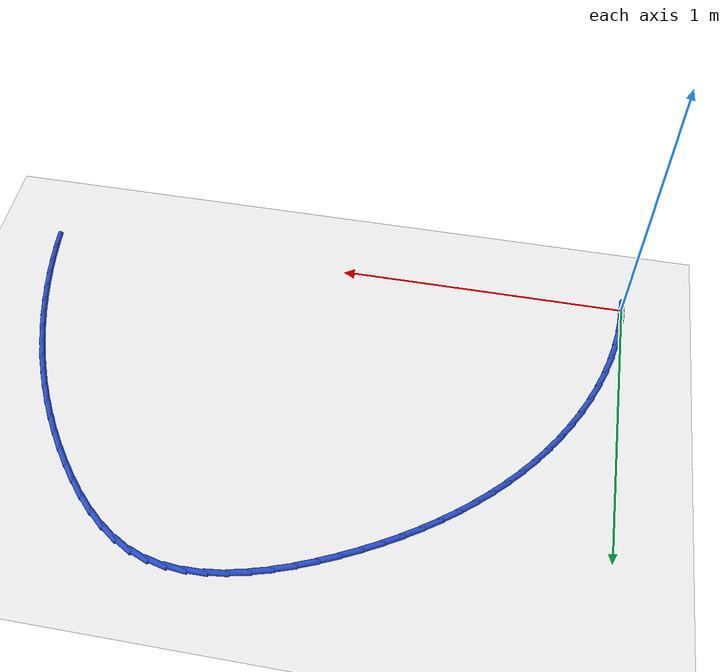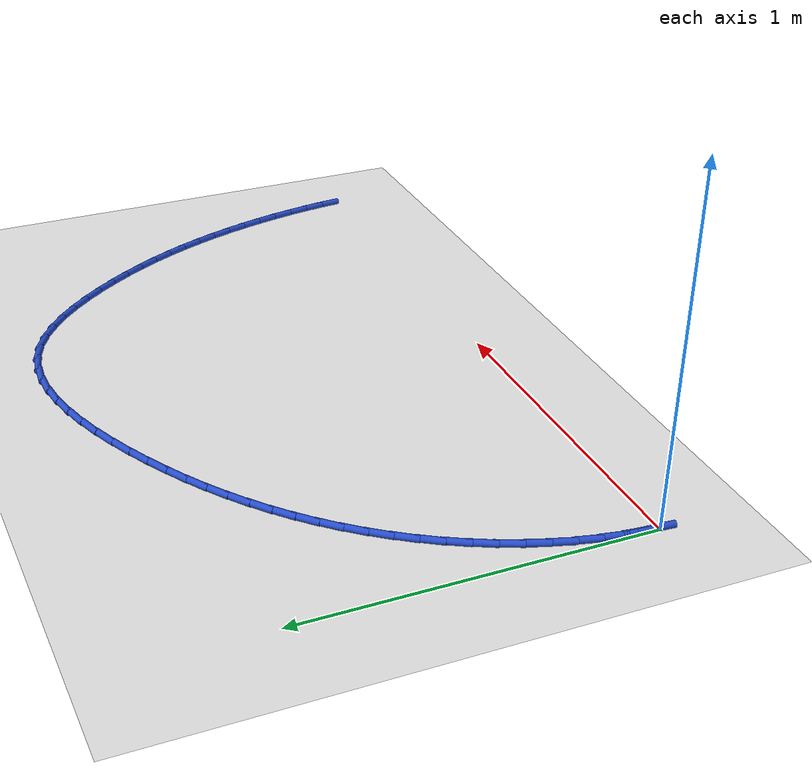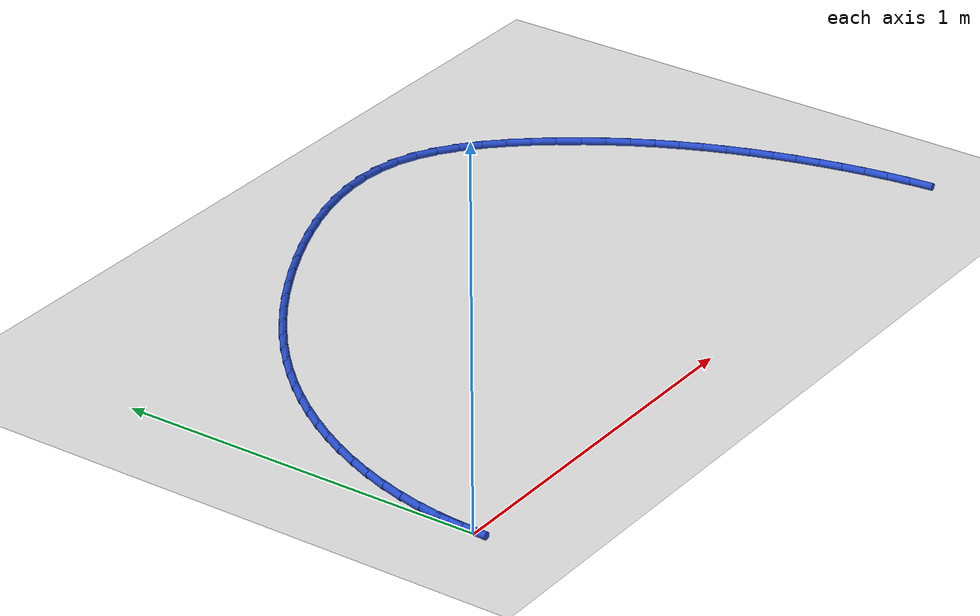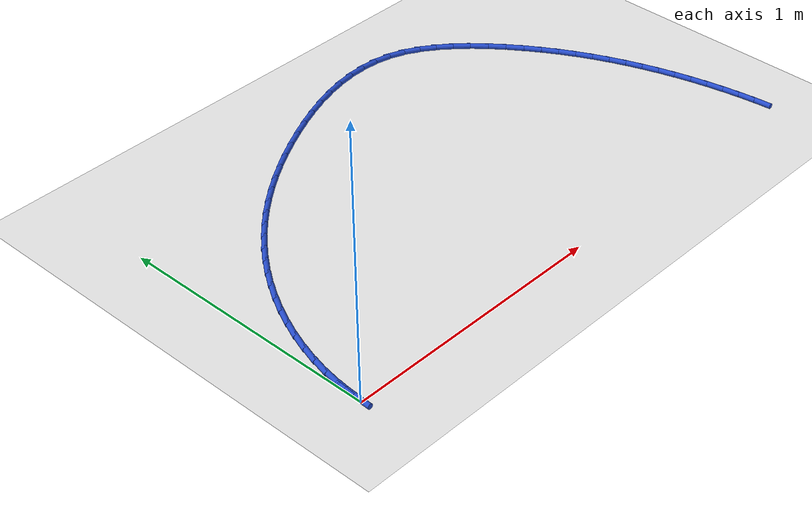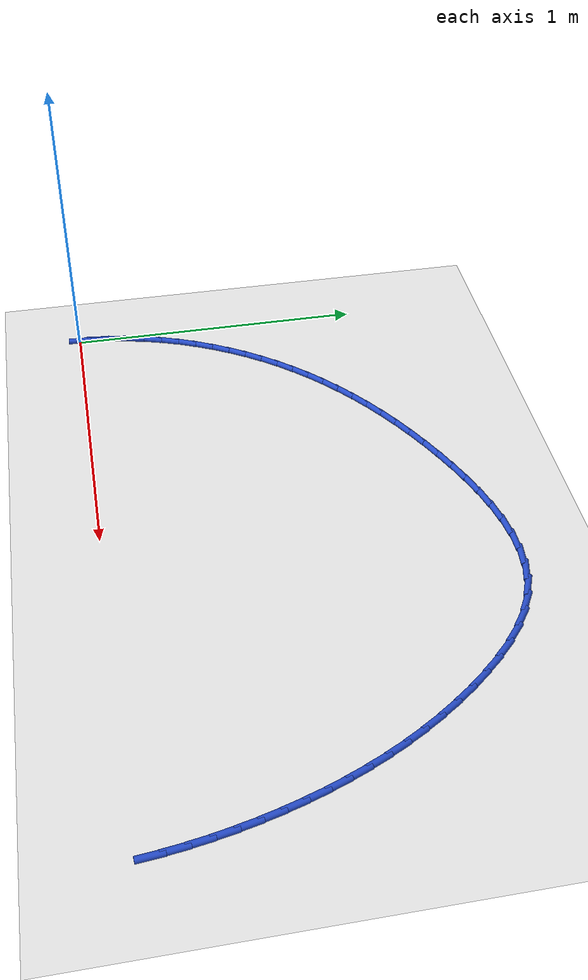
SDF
<sdf version="1.6">
 <world name="default">
  <model name="ground_plane">
   <static>1</static>
   <link name="link">
    <collision name="collision">
     <geometry><plane><normal>0 0 1</normal><size>100 100</size></plane></geometry>
     <surface><friction><ode><mu>100</mu><mu2>50</mu2></ode></friction></surface>
    </collision>
    <visual name="visual">
     <cast_shadows>0</cast_shadows>
     <geometry><plane><normal>0 0 1</normal><size>100 100</size></plane></geometry>
     <material>
      <script><uri>file://media/materials/scripts/gazebo.material</uri><name>Gazebo/WhiteGlow</name></script>
     </material>
    </visual>
   </link>
  </model>
  <model name="line">
   <link name="link_1">
    <pose>0.003250588117856417 0.06508628242194739 0.01 0 1.57 1.4542673928490195</pose>
    <collision name="collision">
     <geometry><cylinder><radius>0.01</radius><length>0.08</length></cylinder></geometry>
    </collision>
    <visual name="visual">
     <material>
      <script><name>Gazebo/Blue</name><uri>file://media/materials/scripts/gazebo.material</uri></script>
     </material>
     <geometry><cylinder><radius>0.01</radius><length>0.08</length></cylinder></geometry>
    </visual>
   </link>
   <link name="link_2">
    <pose>0.010806965055310272 0.12963800376999615 0.01 0 1.57 1.3905275361110174</pose>
    <collision name="collision">
     <geometry><cylinder><radius>0.01</radius><length>0.08</length></cylinder></geometry>
    </collision>
    <visual name="visual">
     <material>
      <script><name>Gazebo/Blue</name><uri>file://media/materials/scripts/gazebo.material</uri></script>
     </material>
     <geometry><cylinder><radius>0.01</radius><length>0.08</length></cylinder></geometry>
    </visual>
   </link>
   <link name="link_3">
    <pose>0.022441281605132455 0.19347610056897954 0.01 0 1.57 1.3295883491278213</pose>
    <collision name="collision">
     <geometry><cylinder><radius>0.01</radius><length>0.08</length></cylinder></geometry>
    </collision>
    <visual name="visual">
     <material>
      <script><name>Gazebo/Blue</name><uri>file://media/materials/scripts/gazebo.material</uri></script>
     </material>
     <geometry><cylinder><radius>0.01</radius><length>0.08</length></cylinder></geometry>
    </visual>
   </link>
   <link name="link_4">
    <pose>0.03792568856009386 0.25642150934373087 0.01 0 1.57 1.2712848922088122</pose>
    <collision name="collision">
     <geometry><cylinder><radius>0.01</radius><length>0.08</length></cylinder></geometry>
    </collision>
    <visual name="visual">
     <material>
      <script><name>Gazebo/Blue</name><uri>file://media/materials/scripts/gazebo.material</uri></script>
     </material>
     <geometry><cylinder><radius>0.01</radius><length>0.08</length></cylinder></geometry>
    </visual>
   </link>
   <link name="link_5">
    <pose>0.057032336712965356 0.31829516661908314 0.01 0 1.57 1.2153926182208388</pose>
    <collision name="collision">
     <geometry><cylinder><radius>0.01</radius><length>0.08</length></cylinder></geometry>
    </collision>
    <visual name="visual">
     <material>
      <script><name>Gazebo/Blue</name><uri>file://media/materials/scripts/gazebo.material</uri></script>
     </material>
     <geometry><cylinder><radius>0.01</radius><length>0.08</length></cylinder></geometry>
    </visual>
   </link>
   <link name="link_6">
    <pose>0.07953337685651775 0.3789180089198695 0.01 0 1.57 1.1616424842232178</pose>
    <collision name="collision">
     <geometry><cylinder><radius>0.01</radius><length>0.08</length></cylinder></geometry>
    </collision>
    <visual name="visual">
     <material>
      <script><name>Gazebo/Blue</name><uri>file://media/materials/scripts/gazebo.material</uri></script>
     </material>
     <geometry><cylinder><radius>0.01</radius><length>0.08</length></cylinder></geometry>
    </visual>
   </link>
   <link name="link_7">
    <pose>0.10520095978352198 0.4381109727709233 0.01 0 1.57 1.1097324065377252</pose>
    <collision name="collision">
     <geometry><cylinder><radius>0.01</radius><length>0.08</length></cylinder></geometry>
    </collision>
    <visual name="visual">
     <material>
      <script><name>Gazebo/Blue</name><uri>file://media/materials/scripts/gazebo.material</uri></script>
     </material>
     <geometry><cylinder><radius>0.01</radius><length>0.08</length></cylinder></geometry>
    </visual>
   </link>
   <link name="link_8">
    <pose>0.1338072362867489 0.4956949946970776 0.01 0 1.57 1.0593339608173005</pose>
    <collision name="collision">
     <geometry><cylinder><radius>0.01</radius><length>0.08</length></cylinder></geometry>
    </collision>
    <visual name="visual">
     <material>
      <script><name>Gazebo/Blue</name><uri>file://media/materials/scripts/gazebo.material</uri></script>
     </material>
     <geometry><cylinder><radius>0.01</radius><length>0.08</length></cylinder></geometry>
    </visual>
   </link>
   <link name="link_9">
    <pose>0.16512457917793538 0.5514912667273931 0.01 0 1.57 1.0099193973070923</pose>
    <collision name="collision">
     <geometry><cylinder><radius>0.01</radius><length>0.08</length></cylinder></geometry>
    </collision>
    <visual name="visual">
     <material>
      <script><name>Gazebo/Blue</name><uri>file://media/materials/scripts/gazebo.material</uri></script>
     </material>
     <geometry><cylinder><radius>0.01</radius><length>0.08</length></cylinder></geometry>
    </visual>
   </link>
   <link name="link_10">
    <pose>0.1989741830446452 0.6053771660463702 0.01 0 1.57 0.9610086905688403</pose>
    <collision name="collision">
     <geometry><cylinder><radius>0.01</radius><length>0.08</length></cylinder></geometry>
    </collision>
    <visual name="visual">
     <material>
      <script><name>Gazebo/Blue</name><uri>file://media/materials/scripts/gazebo.material</uri></script>
     </material>
     <geometry><cylinder><radius>0.01</radius><length>0.08</length></cylinder></geometry>
    </visual>
   </link>
   <link name="link_11">
    <pose>0.23528704441753193 0.6573564322891907 0.01 0 1.57 0.9127402957853704</pose>
    <collision name="collision">
     <geometry><cylinder><radius>0.01</radius><length>0.08</length></cylinder></geometry>
    </collision>
    <visual name="visual">
     <material>
      <script><name>Gazebo/Blue</name><uri>file://media/materials/scripts/gazebo.material</uri></script>
     </material>
     <geometry><cylinder><radius>0.01</radius><length>0.08</length></cylinder></geometry>
    </visual>
   </link>
   <link name="link_12">
    <pose>0.27400915317218794 0.7074500597566379 0.01 0 1.57 0.8653074858099016</pose>
    <collision name="collision">
     <geometry><cylinder><radius>0.01</radius><length>0.08</length></cylinder></geometry>
    </collision>
    <visual name="visual">
     <material>
      <script><name>Gazebo/Blue</name><uri>file://media/materials/scripts/gazebo.material</uri></script>
     </material>
     <geometry><cylinder><radius>0.01</radius><length>0.08</length></cylinder></geometry>
    </visual>
   </link>
   <link name="link_13">
    <pose>0.31508649918420556 0.7556790427494944 0.01 0 1.57 0.8188819547641519</pose>
    <collision name="collision">
     <geometry><cylinder><radius>0.01</radius><length>0.08</length></cylinder></geometry>
    </collision>
    <visual name="visual">
     <material>
      <script><name>Gazebo/Blue</name><uri>file://media/materials/scripts/gazebo.material</uri></script>
     </material>
     <geometry><cylinder><radius>0.01</radius><length>0.08</length></cylinder></geometry>
    </visual>
   </link>
   <link name="link_14">
    <pose>0.35846507232917724 0.8020643755685435 0.01 0 1.57 0.7736110246855883</pose>
    <collision name="collision">
     <geometry><cylinder><radius>0.01</radius><length>0.08</length></cylinder></geometry>
    </collision>
    <visual name="visual">
     <material>
      <script><name>Gazebo/Blue</name><uri>file://media/materials/scripts/gazebo.material</uri></script>
     </material>
     <geometry><cylinder><radius>0.01</radius><length>0.08</length></cylinder></geometry>
    </visual>
   </link>
   <link name="link_15">
    <pose>0.4040908624826954 0.8466270525145679 0.01 0 1.57 0.7296161619519644</pose>
    <collision name="collision">
     <geometry><cylinder><radius>0.01</radius><length>0.08</length></cylinder></geometry>
    </collision>
    <visual name="visual">
     <material>
      <script><name>Gazebo/Blue</name><uri>file://media/materials/scripts/gazebo.material</uri></script>
     </material>
     <geometry><cylinder><radius>0.01</radius><length>0.08</length></cylinder></geometry>
    </visual>
   </link>
   <link name="link_16">
    <pose>0.4519098595203524 0.8893880678883513 0.01 0 1.57 0.686992719460715</pose>
    <collision name="collision">
     <geometry><cylinder><radius>0.01</radius><length>0.08</length></cylinder></geometry>
    </collision>
    <visual name="visual">
     <material>
      <script><name>Gazebo/Blue</name><uri>file://media/materials/scripts/gazebo.material</uri></script>
     </material>
     <geometry><cylinder><radius>0.01</radius><length>0.08</length></cylinder></geometry>
    </visual>
   </link>
   <link name="link_17">
    <pose>0.501868053317741 0.9303684159906765 0.01 0 1.57 0.6458107336852247</pose>
    <collision name="collision">
     <geometry><cylinder><radius>0.01</radius><length>0.08</length></cylinder></geometry>
    </collision>
    <visual name="visual">
     <material>
      <script><name>Gazebo/Blue</name><uri>file://media/materials/scripts/gazebo.material</uri></script>
     </material>
     <geometry><cylinder><radius>0.01</radius><length>0.08</length></cylinder></geometry>
    </visual>
   </link>
   <link name="link_18">
    <pose>0.553911433750453 0.9695890911223265 0.01 0 1.57 0.6061165537548413</pose>
    <collision name="collision">
     <geometry><cylinder><radius>0.01</radius><length>0.08</length></cylinder></geometry>
    </collision>
    <visual name="visual">
     <material>
      <script><name>Gazebo/Blue</name><uri>file://media/materials/scripts/gazebo.material</uri></script>
     </material>
     <geometry><cylinder><radius>0.01</radius><length>0.08</length></cylinder></geometry>
    </visual>
   </link>
   <link name="link_19">
    <pose>0.6079859906940812 1.0070710875840843 0.01 0 1.57 0.5679350614733311</pose>
    <collision name="collision">
     <geometry><cylinder><radius>0.01</radius><length>0.08</length></cylinder></geometry>
    </collision>
    <visual name="visual">
     <material>
      <script><name>Gazebo/Blue</name><uri>file://media/materials/scripts/gazebo.material</uri></script>
     </material>
     <geometry><cylinder><radius>0.01</radius><length>0.08</length></cylinder></geometry>
    </visual>
   </link>
   <link name="link_20">
    <pose>0.664037714024218 1.0428353996767328 0.01 0 1.57 0.5312722506015919</pose>
    <collision name="collision">
     <geometry><cylinder><radius>0.01</radius><length>0.08</length></cylinder></geometry>
    </collision>
    <visual name="visual">
     <material>
      <script><name>Gazebo/Blue</name><uri>file://media/materials/scripts/gazebo.material</uri></script>
     </material>
     <geometry><cylinder><radius>0.01</radius><length>0.08</length></cylinder></geometry>
    </visual>
   </link>
   <link name="link_21">
    <pose>0.7220125936164552 1.0769030217010551 0.01 0 1.57 0.4961179622759861</pose>
    <collision name="collision">
     <geometry><cylinder><radius>0.01</radius><length>0.08</length></cylinder></geometry>
    </collision>
    <visual name="visual">
     <material>
      <script><name>Gazebo/Blue</name><uri>file://media/materials/scripts/gazebo.material</uri></script>
     </material>
     <geometry><cylinder><radius>0.01</radius><length>0.08</length></cylinder></geometry>
    </visual>
   </link>
   <link name="link_22">
    <pose>0.7818566193463863 1.109294947957835 0.01 0 1.57 0.46229518126520197</pose>
    <collision name="collision">
     <geometry><cylinder><radius>0.01</radius><length>0.08</length></cylinder></geometry>
    </collision>
    <visual name="visual">
     <material>
      <script><name>Gazebo/Blue</name><uri>file://media/materials/scripts/gazebo.material</uri></script>
     </material>
     <geometry><cylinder><radius>0.01</radius><length>0.08</length></cylinder></geometry>
    </visual>
   </link>
   <link name="link_23">
    <pose>0.843507489464606 1.1400162304495147 0.01 0 1.57 0.4260298593438556</pose>
    <collision name="collision">
     <geometry><cylinder><radius>0.01</radius><length>0.08</length></cylinder></geometry>
    </collision>
    <visual name="visual">
     <material>
      <script><name>Gazebo/Blue</name><uri>file://media/materials/scripts/gazebo.material</uri></script>
     </material>
     <geometry><cylinder><radius>0.01</radius><length>0.08</length></cylinder></geometry>
    </visual>
   </link>
   <link name="link_24">
    <pose>0.9067086740428729 1.1686984788708945 0.01 0 1.57 0.3828916015726775</pose>
    <collision name="collision">
     <geometry><cylinder><radius>0.01</radius><length>0.08</length></cylinder></geometry>
    </collision>
    <visual name="visual">
     <material>
      <script><name>Gazebo/Blue</name><uri>file://media/materials/scripts/gazebo.material</uri></script>
     </material>
     <geometry><cylinder><radius>0.01</radius><length>0.08</length></cylinder></geometry>
    </visual>
   </link>
   <link name="link_25">
    <pose>0.9710074385992452 1.1945960606353352 0.01 0 1.57 0.33149818635385725</pose>
    <collision name="collision">
     <geometry><cylinder><radius>0.01</radius><length>0.08</length></cylinder></geometry>
    </collision>
    <visual name="visual">
     <material>
      <script><name>Gazebo/Blue</name><uri>file://media/materials/scripts/gazebo.material</uri></script>
     </material>
     <geometry><cylinder><radius>0.01</radius><length>0.08</length></cylinder></geometry>
    </visual>
   </link>
   <link name="link_26">
    <pose>1.03594236173911 1.2169466408386782 0.01 0 1.57 0.27030834063154224</pose>
    <collision name="collision">
     <geometry><cylinder><radius>0.01</radius><length>0.08</length></cylinder></geometry>
    </collision>
    <visual name="visual">
     <material>
      <script><name>Gazebo/Blue</name><uri>file://media/materials/scripts/gazebo.material</uri></script>
     </material>
     <geometry><cylinder><radius>0.01</radius><length>0.08</length></cylinder></geometry>
    </visual>
   </link>
   <link name="link_27">
    <pose>1.101052022067855 1.2349878845767661 0.01 0 1.57 0.19746938621623242</pose>
    <collision name="collision">
     <geometry><cylinder><radius>0.01</radius><length>0.08</length></cylinder></geometry>
    </collision>
    <visual name="visual">
     <material>
      <script><name>Gazebo/Blue</name><uri>file://media/materials/scripts/gazebo.material</uri></script>
     </material>
     <geometry><cylinder><radius>0.01</radius><length>0.08</length></cylinder></geometry>
    </visual>
   </link>
   <link name="link_28">
    <pose>1.165874998190867 1.247957456945441 0.01 0 1.57 0.1109059741574494</pose>
    <collision name="collision">
     <geometry><cylinder><radius>0.01</radius><length>0.08</length></cylinder></geometry>
    </collision>
    <visual name="visual">
     <material>
      <script><name>Gazebo/Blue</name><uri>file://media/materials/scripts/gazebo.material</uri></script>
     </material>
     <geometry><cylinder><radius>0.01</radius><length>0.08</length></cylinder></geometry>
    </visual>
   </link>
   <link name="link_29">
    <pose>1.2299498687135342 1.2550930230405453 0.01 0 1.57 0.008577248824313885</pose>
    <collision name="collision">
     <geometry><cylinder><radius>0.01</radius><length>0.08</length></cylinder></geometry>
    </collision>
    <visual name="visual">
     <material>
      <script><name>Gazebo/Blue</name><uri>file://media/materials/scripts/gazebo.material</uri></script>
     </material>
     <geometry><cylinder><radius>0.01</radius><length>0.08</length></cylinder></geometry>
    </visual>
   </link>
   <link name="link_30">
    <pose>1.2928152122412442 1.2556322479579214 0.01 0 1.57 -0.11098124444945745</pose>
    <collision name="collision">
     <geometry><cylinder><radius>0.01</radius><length>0.08</length></cylinder></geometry>
    </collision>
    <visual name="visual">
     <material>
      <script><name>Gazebo/Blue</name><uri>file://media/materials/scripts/gazebo.material</uri></script>
     </material>
     <geometry><cylinder><radius>0.01</radius><length>0.08</length></cylinder></geometry>
    </visual>
   </link>
   <link name="link_31">
    <pose>1.3540096073793844 1.2488127967934108 0.01 0 1.57 -0.24776470333364242</pose>
    <collision name="collision">
     <geometry><cylinder><radius>0.01</radius><length>0.08</length></cylinder></geometry>
    </collision>
    <visual name="visual">
     <material>
      <script><name>Gazebo/Blue</name><uri>file://media/materials/scripts/gazebo.material</uri></script>
     </material>
     <geometry><cylinder><radius>0.01</radius><length>0.08</length></cylinder></geometry>
    </visual>
   </link>
   <link name="link_32">
    <pose>1.4130716327333417 1.2338723346428564 0.01 0 1.57 -0.39656884118153624</pose>
    <collision name="collision">
     <geometry><cylinder><radius>0.01</radius><length>0.08</length></cylinder></geometry>
    </collision>
    <visual name="visual">
     <material>
      <script><name>Gazebo/Blue</name><uri>file://media/materials/scripts/gazebo.material</uri></script>
     </material>
     <geometry><cylinder><radius>0.01</radius><length>0.08</length></cylinder></geometry>
    </visual>
   </link>
   <link name="link_33">
    <pose>1.469576535880511 1.2102106482737078 0.01 0 1.57 -0.5327721002808438</pose>
    <collision name="collision">
     <geometry><cylinder><radius>0.01</radius><length>0.08</length></cylinder></geometry>
    </collision>
    <visual name="visual">
     <material>
      <script><name>Gazebo/Blue</name><uri>file://media/materials/scripts/gazebo.material</uri></script>
     </material>
     <geometry><cylinder><radius>0.01</radius><length>0.08</length></cylinder></geometry>
    </visual>
   </link>
   <link name="link_34">
    <pose>1.5233836347340122 1.1784834625166165 0.01 0 1.57 -0.6463093380492055</pose>
    <collision name="collision">
     <geometry><cylinder><radius>0.01</radius><length>0.08</length></cylinder></geometry>
    </collision>
    <visual name="visual">
     <material>
      <script><name>Gazebo/Blue</name><uri>file://media/materials/scripts/gazebo.material</uri></script>
     </material>
     <geometry><cylinder><radius>0.01</radius><length>0.08</length></cylinder></geometry>
    </visual>
   </link>
   <link name="link_35">
    <pose>1.5744848661770008 1.139932840131341 0.01 0 1.57 -0.7393918563579897</pose>
    <collision name="collision">
     <geometry><cylinder><radius>0.01</radius><length>0.08</length></cylinder></geometry>
    </collision>
    <visual name="visual">
     <material>
      <script><name>Gazebo/Blue</name><uri>file://media/materials/scripts/gazebo.material</uri></script>
     </material>
     <geometry><cylinder><radius>0.01</radius><length>0.08</length></cylinder></geometry>
    </visual>
   </link>
   <link name="link_36">
    <pose>1.6228729149561958 1.095804150348599 0.01 0 1.57 -0.8150704101806093</pose>
    <collision name="collision">
     <geometry><cylinder><radius>0.01</radius><length>0.08</length></cylinder></geometry>
    </collision>
    <visual name="visual">
     <material>
      <script><name>Gazebo/Blue</name><uri>file://media/materials/scripts/gazebo.material</uri></script>
     </material>
     <geometry><cylinder><radius>0.01</radius><length>0.08</length></cylinder></geometry>
    </visual>
   </link>
   <link name="link_37">
    <pose>1.6685404658183165 1.0473427623991074 0.01 0 1.57 -0.8762587377811254</pose>
    <collision name="collision">
     <geometry><cylinder><radius>0.01</radius><length>0.08</length></cylinder></geometry>
    </collision>
    <visual name="visual">
     <material>
      <script><name>Gazebo/Blue</name><uri>file://media/materials/scripts/gazebo.material</uri></script>
     </material>
     <geometry><cylinder><radius>0.01</radius><length>0.08</length></cylinder></geometry>
    </visual>
   </link>
   <link name="link_38">
    <pose>1.7114802035100813 0.9957940455135834 0.01 0 1.57 -0.925409544350224</pose>
    <collision name="collision">
     <geometry><cylinder><radius>0.01</radius><length>0.08</length></cylinder></geometry>
    </collision>
    <visual name="visual">
     <material>
      <script><name>Gazebo/Blue</name><uri>file://media/materials/scripts/gazebo.material</uri></script>
     </material>
     <geometry><cylinder><radius>0.01</radius><length>0.08</length></cylinder></geometry>
    </visual>
   </link>
   <link name="link_39">
    <pose>1.7516852873647406 0.9423973326563033 0.01 0 1.57 -0.9675765143213644</pose>
    <collision name="collision">
     <geometry><cylinder><radius>0.01</radius><length>0.08</length></cylinder></geometry>
    </collision>
    <visual name="visual">
     <material>
      <script><name>Gazebo/Blue</name><uri>file://media/materials/scripts/gazebo.material</uri></script>
     </material>
     <geometry><cylinder><radius>0.01</radius><length>0.08</length></cylinder></geometry>
    </visual>
   </link>
   <link name="link_40">
    <pose>1.7891824624657935 0.8879647796103313 0.01 0 1.57 -1.0086710077180179</pose>
    <collision name="collision">
     <geometry><cylinder><radius>0.01</radius><length>0.08</length></cylinder></geometry>
    </collision>
    <visual name="visual">
     <material>
      <script><name>Gazebo/Blue</name><uri>file://media/materials/scripts/gazebo.material</uri></script>
     </material>
     <geometry><cylinder><radius>0.01</radius><length>0.08</length></cylinder></geometry>
    </visual>
   </link>
   <link name="link_41">
    <pose>1.8240537046543037 0.832606062114021 0.01 0 1.57 -1.0490412065317973</pose>
    <collision name="collision">
     <geometry><cylinder><radius>0.01</radius><length>0.08</length></cylinder></geometry>
    </collision>
    <visual name="visual">
     <material>
      <script><name>Gazebo/Blue</name><uri>file://media/materials/scripts/gazebo.material</uri></script>
     </material>
     <geometry><cylinder><radius>0.01</radius><length>0.08</length></cylinder></geometry>
    </visual>
   </link>
   <link name="link_42">
    <pose>1.8563861320187585 0.7763654516571322 0.01 0 1.57 -1.0885221469435016</pose>
    <collision name="collision">
     <geometry><cylinder><radius>0.01</radius><length>0.08</length></cylinder></geometry>
    </collision>
    <visual name="visual">
     <material>
      <script><name>Gazebo/Blue</name><uri>file://media/materials/scripts/gazebo.material</uri></script>
     </material>
     <geometry><cylinder><radius>0.01</radius><length>0.08</length></cylinder></geometry>
    </visual>
   </link>
   <link name="link_43">
    <pose>1.8862668626476435 0.719287219729426 0.01 0 1.57 -1.1269652739600031</pose>
    <collision name="collision">
     <geometry><cylinder><radius>0.01</radius><length>0.08</length></cylinder></geometry>
    </collision>
    <visual name="visual">
     <material>
      <script><name>Gazebo/Blue</name><uri>file://media/materials/scripts/gazebo.material</uri></script>
     </material>
     <geometry><cylinder><radius>0.01</radius><length>0.08</length></cylinder></geometry>
    </visual>
   </link>
   <link name="link_44">
    <pose>1.9137830146294459 0.6614156378206624 0.01 0 1.57 -1.164240431437653</pose>
    <collision name="collision">
     <geometry><cylinder><radius>0.01</radius><length>0.08</length></cylinder></geometry>
    </collision>
    <visual name="visual">
     <material>
      <script><name>Gazebo/Blue</name><uri>file://media/materials/scripts/gazebo.material</uri></script>
     </material>
     <geometry><cylinder><radius>0.01</radius><length>0.08</length></cylinder></geometry>
    </visual>
   </link>
   <link name="link_45">
    <pose>1.9390217060526518 0.6027949774206024 0.01 0 1.57 -1.2002369544189695</pose>
    <collision name="collision">
     <geometry><cylinder><radius>0.01</radius><length>0.08</length></cylinder></geometry>
    </collision>
    <visual name="visual">
     <material>
      <script><name>Gazebo/Blue</name><uri>file://media/materials/scripts/gazebo.material</uri></script>
     </material>
     <geometry><cylinder><radius>0.01</radius><length>0.08</length></cylinder></geometry>
    </visual>
   </link>
   <link name="link_46">
    <pose>1.9620700550057482 0.5434695100190061 0.01 0 1.57 -1.2348639140825046</pose>
    <collision name="collision">
     <geometry><cylinder><radius>0.01</radius><length>0.08</length></cylinder></geometry>
    </collision>
    <visual name="visual">
     <material>
      <script><name>Gazebo/Blue</name><uri>file://media/materials/scripts/gazebo.material</uri></script>
     </material>
     <geometry><cylinder><radius>0.01</radius><length>0.08</length></cylinder></geometry>
    </visual>
   </link>
   <link name="link_47">
    <pose>1.9830151795772202 0.48348350710563404 0.01 0 1.57 -1.2680496194625333</pose>
    <collision name="collision">
     <geometry><cylinder><radius>0.01</radius><length>0.08</length></cylinder></geometry>
    </collision>
    <visual name="visual">
     <material>
      <script><name>Gazebo/Blue</name><uri>file://media/materials/scripts/gazebo.material</uri></script>
     </material>
     <geometry><cylinder><radius>0.01</radius><length>0.08</length></cylinder></geometry>
    </visual>
   </link>
   <link name="link_48">
    <pose>2.0019441978555546 0.4228812401702466 0.01 0 1.57 -1.29974604226859</pose>
    <collision name="collision">
     <geometry><cylinder><radius>0.01</radius><length>0.08</length></cylinder></geometry>
    </collision>
    <visual name="visual">
     <material>
      <script><name>Gazebo/Blue</name><uri>file://media/materials/scripts/gazebo.material</uri></script>
     </material>
     <geometry><cylinder><radius>0.01</radius><length>0.08</length></cylinder></geometry>
    </visual>
   </link>
   <link name="link_49">
    <pose>2.0189438730505307 0.36170694686406957 0.01 0 1.57 -1.330387577299915</pose>
    <collision name="collision">
     <geometry><cylinder><radius>0.01</radius><length>0.08</length></cylinder></geometry>
    </collision>
    <visual name="visual">
     <material>
      <script><name>Gazebo/Blue</name><uri>file://media/materials/scripts/gazebo.material</uri></script>
     </material>
     <geometry><cylinder><radius>0.01</radius><length>0.08</length></cylinder></geometry>
    </visual>
   </link>
   <link name="link_50">
    <pose>2.0340708411022916 0.30000199213101364 0.01 0 1.57 -1.3607817116303733</pose>
    <collision name="collision">
     <geometry><cylinder><radius>0.01</radius><length>0.08</length></cylinder></geometry>
    </collision>
    <visual name="visual">
     <material>
      <script><name>Gazebo/Blue</name><uri>file://media/materials/scripts/gazebo.material</uri></script>
     </material>
     <geometry><cylinder><radius>0.01</radius><length>0.08</length></cylinder></geometry>
    </visual>
   </link>
   <link name="link_51">
    <pose>2.0473290960614916 0.237802721384748 0.01 0 1.57 -1.391005921368889</pose>
    <collision name="collision">
     <geometry><cylinder><radius>0.01</radius><length>0.08</length></cylinder></geometry>
    </collision>
    <visual name="visual">
     <material>
      <script><name>Gazebo/Blue</name><uri>file://media/materials/scripts/gazebo.material</uri></script>
     </material>
     <geometry><cylinder><radius>0.01</radius><length>0.08</length></cylinder></geometry>
    </visual>
   </link>
   <link name="link_52">
    <pose>2.0587173296921213 0.1751449744532096 0.01 0 1.57 -1.4210561493153775</pose>
    <collision name="collision">
     <geometry><cylinder><radius>0.01</radius><length>0.08</length></cylinder></geometry>
    </collision>
    <visual name="visual">
     <material>
      <script><name>Gazebo/Blue</name><uri>file://media/materials/scripts/gazebo.material</uri></script>
     </material>
     <geometry><cylinder><radius>0.01</radius><length>0.08</length></cylinder></geometry>
    </visual>
   </link>
   <link name="link_53">
    <pose>2.068234233758169 0.11206459116433518 0.01 0 1.57 -1.4509293343309924</pose>
    <collision name="collision">
     <geometry><cylinder><radius>0.01</radius><length>0.08</length></cylinder></geometry>
    </collision>
    <visual name="visual">
     <material>
      <script><name>Gazebo/Blue</name><uri>file://media/materials/scripts/gazebo.material</uri></script>
     </material>
     <geometry><cylinder><radius>0.01</radius><length>0.08</length></cylinder></geometry>
    </visual>
   </link>
   <link name="link_54">
    <pose>2.0758785000236255 0.04859741134606145 0.01 0 1.57 -1.4806233407934282</pose>
    <collision name="collision">
     <geometry><cylinder><radius>0.01</radius><length>0.08</length></cylinder></geometry>
    </collision>
    <visual name="visual">
     <material>
      <script><name>Gazebo/Blue</name><uri>file://media/materials/scripts/gazebo.material</uri></script>
     </material>
     <geometry><cylinder><radius>0.01</radius><length>0.08</length></cylinder></geometry>
    </visual>
   </link>
   <link name="link_110">
    <pose>3.469446951953614e-17 1.3877787807814457e-16 0.01 0 1.57 1.5201038206251625</pose>
    <collision name="collision">
     <geometry><cylinder><radius>0.01</radius><length>0.08</length></cylinder></geometry>
    </collision>
    <visual name="visual">
     <material>
      <script><name>Gazebo/Blue</name><uri>file://media/materials/scripts/gazebo.material</uri></script>
     </material>
     <geometry><cylinder><radius>0.01</radius><length>0.08</length></cylinder></geometry>
    </visual>
   </link>
   <link name="link_111">
    <pose>0.0033001669184958525 0.06504589804410514 0.01 0 1.57 1.5201038206251627</pose>
    <collision name="collision">
     <geometry><cylinder><radius>0.01</radius><length>0.08</length></cylinder></geometry>
    </collision>
    <visual name="visual">
     <material>
      <script><name>Gazebo/Blue</name><uri>file://media/materials/scripts/gazebo.material</uri></script>
     </material>
     <geometry><cylinder><radius>0.01</radius><length>0.08</length></cylinder></geometry>
    </visual>
   </link>
  </model>
 </world>
</sdf>
